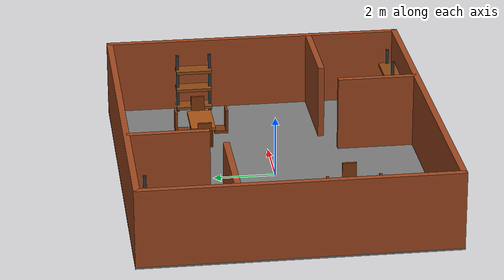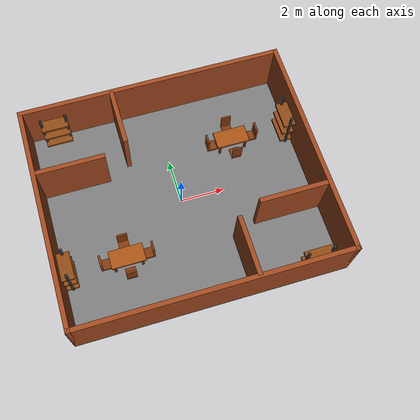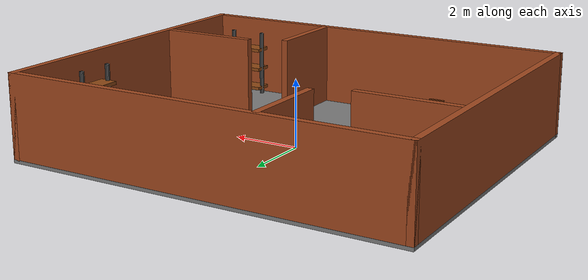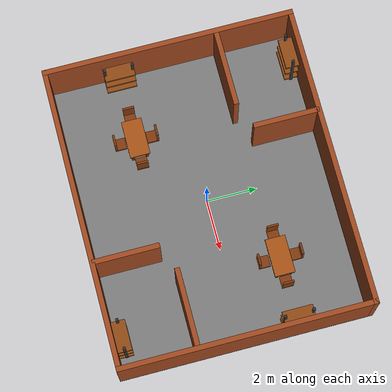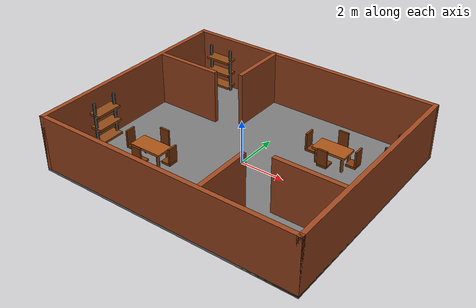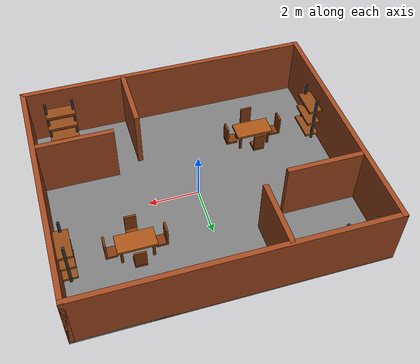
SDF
<?xml version="1.0"?>
<sdf version="1.9">
  <world name="delivery_warehouse">

    <!-- PHYSICS                                                    -->
    <physics name="warehouse_physics" type="ode">
      <max_step_size>0.004</max_step_size>
      <real_time_factor>1.0</real_time_factor>
    </physics>

    <!-- GAZEBO SYSTEMS                                             -->
    <plugin filename="gz-sim-physics-system" name="gz::sim::systems::Physics"/>
    <plugin filename="gz-sim-user-commands-system" name="gz::sim::systems::UserCommands"/>
    <plugin filename="gz-sim-scene-broadcaster-system" name="gz::sim::systems::SceneBroadcaster"/>
    <plugin filename="gz-sim-sensors-system" name="gz::sim::systems::Sensors">
      <render_engine>ogre2</render_engine>
    </plugin>

    <!-- SCENE                                                      -->
    <scene>
      <ambient>0.42 0.42 0.42 1</ambient>
      <background>0.08 0.08 0.08 1</background>
      <shadows>false</shadows>
    </scene>

    <!-- DIRECTIONAL LIGHT                                          -->
    <light name="warehouse_sun" type="directional">
      <pose>0 0 8 0 0 0</pose>
      <cast_shadows>false</cast_shadows>
      <diffuse>0.75 0.75 0.75 1</diffuse>
      <specular>0.15 0.15 0.15 1</specular>
      <direction>-0.25 0.20 -1.0</direction>
    </light>

    <!-- FLOOR                                                      -->
    <model name="warehouse_floor">
      <static>true</static>
      <link name="floor">
        <collision name="collision">
          <geometry>
            <box>
              <size>12.0 10.0 0.10</size>
            </box>
          </geometry>
        </collision>
        <visual name="floor_visual">
          <geometry>
            <box>
              <size>12.0 10.0 0.10</size>
            </box>
          </geometry>
          <material>
            <ambient>0.42 0.42 0.42 1</ambient>
            <diffuse>0.48 0.48 0.48 1</diffuse>
          </material>
        </visual>
      </link>
    </model>

    <!-- OUTER WALL - LEFT                                          -->
    <model name="outer_wall_left">
      <static>true</static>
      <pose>-5.9 0 1.25 0 0 0</pose>
      <link name="wall">
        <collision name="collision">
          <geometry>
            <box>
              <size>0.20 10.0 2.50</size>
            </box>
          </geometry>
        </collision>
        <visual name="wall_visual">
          <geometry>
            <box>
              <size>0.20 10.0 2.50</size>
            </box>
          </geometry>
          <material>
            <ambient>0.52 0.22 0.10 1</ambient>
            <diffuse>0.62 0.28 0.12 1</diffuse>
          </material>
        </visual>
      </link>
    </model>

    <!-- OUTER WALL - RIGHT                                         -->
    <model name="outer_wall_right">
      <static>true</static>
      <pose>5.9 0 1.25 0 0 0</pose>
      <link name="wall">
        <collision name="collision">
          <geometry>
            <box>
              <size>0.20 10.0 2.50</size>
            </box>
          </geometry>
        </collision>
        <visual name="wall_visual">
          <geometry>
            <box>
              <size>0.20 10.0 2.50</size>
            </box>
          </geometry>
          <material>
            <ambient>0.52 0.22 0.10 1</ambient>
            <diffuse>0.62 0.28 0.12 1</diffuse>
          </material>
        </visual>
      </link>
    </model>

    <!-- OUTER WALL - BACK / TOP                                    -->
    <model name="outer_wall_back">
      <static>true</static>
      <pose>0 4.9 1.25 0 0 0</pose>
      <link name="wall">
        <collision name="collision">
          <geometry>
            <box>
              <size>12.0 0.20 2.50</size>
            </box>
          </geometry>
        </collision>
        <visual name="wall_visual">
          <geometry>
            <box>
              <size>12.0 0.20 2.50</size>
            </box>
          </geometry>
          <material>
            <ambient>0.52 0.22 0.10 1</ambient>
            <diffuse>0.62 0.28 0.12 1</diffuse>
          </material>
        </visual>
      </link>
    </model>

    <!-- OUTER WALL - FRONT / BOTTOM                                -->
    <model name="outer_wall_front">
      <static>true</static>
      <pose>0 -4.9 1.25 0 0 0</pose>
      <link name="wall">
        <collision name="collision">
          <geometry>
            <box>
              <size>12.0 0.20 2.50</size>
            </box>
          </geometry>
        </collision>
        <visual name="wall_visual">
          <geometry>
            <box>
              <size>12.0 0.20 2.50</size>
            </box>
          </geometry>
          <material>
            <ambient>0.52 0.22 0.10 1</ambient>
            <diffuse>0.62 0.28 0.12 1</diffuse>
          </material>
        </visual>
      </link>
    </model>

    <!-- ROOM 1 : TOP LEFT                                          -->
    <!-- Room limits approximately:                                 -->
    <!-- X = -5.8 to -1.8                                            -->
    <!-- Y =  1.8 to  4.8                                            -->
    <!-- Opening = exactly 1.0 m                                     -->
    <!-- Opening is at the RIGHT side of the room's front wall.      -->

    <!-- ROOM 1 RIGHT WALL -->
    <model name="room1_right_wall">
      <static>true</static>
      <pose>-1.8 3.6 1.25 0 0 0</pose>
      <link name="wall">
        <collision name="collision">
          <geometry>
            <box>
              <size>0.20 2.60 2.50</size>
            </box>
          </geometry>
        </collision>
        <visual name="wall_visual">
          <geometry>
            <box>
              <size>0.20 2.60 2.50</size>
            </box>
          </geometry>
          <material>
            <ambient>0.52 0.22 0.10 1</ambient>
            <diffuse>0.62 0.28 0.12 1</diffuse>
          </material>
        </visual>
      </link>
    </model>

    <!-- ROOM 1 FRONT WALL -->
    <!-- Left portion -->
    <!-- Ends at x = -2.8 -->
    <!-- Opening: -2.8 to -1.8 = 1.0 m -->
    <model name="room1_front_wall">
      <static>true</static>
      <pose>-4.3 1.9 1.25 0 0 0</pose>
      <link name="wall">
        <collision name="collision">
          <geometry>
            <box>
              <size>3.0 0.20 2.50</size>
            </box>
          </geometry>
        </collision>
        <visual name="wall_visual">
          <geometry>
            <box>
              <size>3.0 0.20 2.50</size>
            </box>
          </geometry>
          <material>
            <ambient>0.52 0.22 0.10 1</ambient>
            <diffuse>0.62 0.28 0.12 1</diffuse>
          </material>
        </visual>
      </link>
    </model>

    <!-- ROOM 2 : BOTTOM RIGHT                                      -->
    <!-- Room limits approximately:                                 -->
    <!-- X =  1.8 to  5.8                                            -->
    <!-- Y = -4.8 to -1.8                                            -->
    <!-- Opening = exactly 1.0 m                                     -->
    <!-- Opening is at the LEFT side of the room's top wall.         -->

    <!-- ROOM 2 LEFT WALL -->
    <model name="room2_left_wall">
      <static>true</static>
      <pose>1.8 -3.6 1.25 0 0 0</pose>
      <link name="wall">
        <collision name="collision">
          <geometry>
            <box>
              <size>0.20 2.60 2.50</size>
            </box>
          </geometry>
        </collision>
        <visual name="wall_visual">
          <geometry>
            <box>
              <size>0.20 2.60 2.50</size>
            </box>
          </geometry>
          <material>
            <ambient>0.52 0.22 0.10 1</ambient>
            <diffuse>0.62 0.28 0.12 1</diffuse>
          </material>
        </visual>
      </link>
    </model>

    <!-- ROOM 2 TOP WALL -->
    <!-- Right portion -->
    <!-- Opening: 1.8 to 2.8 = 1.0 m -->
    <model name="room2_top_wall">
      <static>true</static>
      <pose>4.3 -1.9 1.25 0 0 0</pose>
      <link name="wall">
        <collision name="collision">
          <geometry>
            <box>
              <size>3.0 0.20 2.50</size>
            </box>
          </geometry>
        </collision>
        <visual name="wall_visual">
          <geometry>
            <box>
              <size>3.0 0.20 2.50</size>
            </box>
          </geometry>
          <material>
            <ambient>0.52 0.22 0.10 1</ambient>
            <diffuse>0.62 0.28 0.12 1</diffuse>
          </material>
        </visual>
      </link>
    </model>

    <!-- WOODEN TABLE 1 - UPPER RIGHT                               -->
    <model name="wooden_table_1">
      <static>true</static>
      <pose>3.0 2.1 0.75 0 0 0</pose>
      <link name="table">
        <!-- Table collision -->
        <collision name="collision">
          <geometry>
            <box>
              <size>1.50 0.80 0.10</size>
            </box>
          </geometry>
        </collision>

        <!-- Wooden table top -->
        <visual name="table_top">
          <pose>0 0 0 0 0 0</pose>
          <geometry>
            <box>
              <size>1.50 0.80 0.10</size>
            </box>
          </geometry>
          <material>
            <ambient>0.38 0.16 0.04 1</ambient>
            <diffuse>0.65 0.32 0.08 1</diffuse>
          </material>
        </visual>

        <!-- Legs -->
        <visual name="leg_1">
          <pose>-0.60 -0.28 -0.40 0 0 0</pose>
          <geometry>
            <box>
              <size>0.10 0.10 0.70</size>
            </box>
          </geometry>
          <material>
            <ambient>0.25 0.09 0.02 1</ambient>
            <diffuse>0.42 0.18 0.04 1</diffuse>
          </material>
        </visual>

        <visual name="leg_2">
          <pose>0.60 -0.28 -0.40 0 0 0</pose>
          <geometry>
            <box>
              <size>0.10 0.10 0.70</size>
            </box>
          </geometry>
          <material>
            <ambient>0.25 0.09 0.02 1</ambient>
            <diffuse>0.42 0.18 0.04 1</diffuse>
          </material>
        </visual>

        <visual name="leg_3">
          <pose>-0.60 0.28 -0.40 0 0 0</pose>
          <geometry>
            <box>
              <size>0.10 0.10 0.70</size>
            </box>
          </geometry>
          <material>
            <ambient>0.25 0.09 0.02 1</ambient>
            <diffuse>0.42 0.18 0.04 1</diffuse>
          </material>
        </visual>

        <visual name="leg_4">
          <pose>0.60 0.28 -0.40 0 0 0</pose>
          <geometry>
            <box>
              <size>0.10 0.10 0.70</size>
            </box>
          </geometry>
          <material>
            <ambient>0.25 0.09 0.02 1</ambient>
            <diffuse>0.42 0.18 0.04 1</diffuse>
          </material>
        </visual>
      </link>
    </model>

    <!-- WOODEN TABLE 2 - LOWER LEFT                                -->
    <model name="wooden_table_2">
      <static>true</static>
      <pose>-3.0 -2.1 0.75 0 0 0</pose>
      <link name="table">
        <collision name="collision">
          <geometry>
            <box>
              <size>1.50 0.80 0.10</size>
            </box>
          </geometry>
        </collision>

        <visual name="table_top">
          <geometry>
            <box>
              <size>1.50 0.80 0.10</size>
            </box>
          </geometry>
          <material>
            <ambient>0.38 0.16 0.04 1</ambient>
            <diffuse>0.65 0.32 0.08 1</diffuse>
          </material>
        </visual>

        <visual name="leg_1">
          <pose>-0.60 -0.28 -0.40 0 0 0</pose>
          <geometry>
            <box>
              <size>0.10 0.10 0.70</size>
            </box>
          </geometry>
          <material>
            <ambient>0.25 0.09 0.02 1</ambient>
            <diffuse>0.42 0.18 0.04 1</diffuse>
          </material>
        </visual>

        <visual name="leg_2">
          <pose>0.60 -0.28 -0.40 0 0 0</pose>
          <geometry>
            <box>
              <size>0.10 0.10 0.70</size>
            </box>
          </geometry>
          <material>
            <ambient>0.25 0.09 0.02 1</ambient>
            <diffuse>0.42 0.18 0.04 1</diffuse>
          </material>
        </visual>

        <visual name="leg_3">
          <pose>-0.60 0.28 -0.40 0 0 0</pose>
          <geometry>
            <box>
              <size>0.10 0.10 0.70</size>
            </box>
          </geometry>
          <material>
            <ambient>0.25 0.09 0.02 1</ambient>
            <diffuse>0.42 0.18 0.04 1</diffuse>
          </material>
        </visual>

        <visual name="leg_4">
          <pose>0.60 0.28 -0.40 0 0 0</pose>
          <geometry>
            <box>
              <size>0.10 0.10 0.70</size>
            </box>
          </geometry>
          <material>
            <ambient>0.25 0.09 0.02 1</ambient>
            <diffuse>0.42 0.18 0.04 1</diffuse>
          </material>
        </visual>
      </link>
    </model>

    <!-- CHAIRS AROUND TABLE 1                                      -->

    <!-- Chair 1 -->
    <model name="chair_1">
      <static>true</static>
      <pose>3.0 1.45 0.40 0 0 3.14159</pose>
      <link name="chair">
        <collision name="collision">
          <geometry>
            <box>
              <size>0.45 0.45 0.10</size>
            </box>
          </geometry>
        </collision>
        <visual name="seat">
          <geometry>
            <box>
              <size>0.45 0.45 0.10</size>
            </box>
          </geometry>
          <material>
            <ambient>0.30 0.10 0.02 1</ambient>
            <diffuse>0.50 0.22 0.05 1</diffuse>
          </material>
        </visual>
        <visual name="back">
          <pose>0 0.19 0.40 0 0 0</pose>
          <geometry>
            <box>
              <size>0.45 0.08 0.70</size>
            </box>
          </geometry>
          <material>
            <ambient>0.30 0.10 0.02 1</ambient>
            <diffuse>0.50 0.22 0.05 1</diffuse>
          </material>
        </visual>
      </link>
    </model>

    <!-- Chair 2 -->
    <model name="chair_2">
      <static>true</static>
      <pose>3.0 2.75 0.40 0 0 0</pose>
      <link name="chair">
        <collision name="collision">
          <geometry>
            <box>
              <size>0.45 0.45 0.10</size>
            </box>
          </geometry>
        </collision>
        <visual name="seat">
          <geometry>
            <box>
              <size>0.45 0.45 0.10</size>
            </box>
          </geometry>
          <material>
            <ambient>0.30 0.10 0.02 1</ambient>
            <diffuse>0.50 0.22 0.05 1</diffuse>
          </material>
        </visual>
        <visual name="back">
          <pose>0 0.19 0.40 0 0 0</pose>
          <geometry>
            <box>
              <size>0.45 0.08 0.70</size>
            </box>
          </geometry>
          <material>
            <ambient>0.30 0.10 0.02 1</ambient>
            <diffuse>0.50 0.22 0.05 1</diffuse>
          </material>
        </visual>
      </link>
    </model>

    <!-- Chair 3 -->
    <model name="chair_3">
      <static>true</static>
      <pose>2.05 2.10 0.40 0 0 1.5708</pose>
      <link name="chair">
        <collision name="collision">
          <geometry>
            <box>
              <size>0.45 0.45 0.10</size>
            </box>
          </geometry>
        </collision>
        <visual name="seat">
          <geometry>
            <box>
              <size>0.45 0.45 0.10</size>
            </box>
          </geometry>
          <material>
            <ambient>0.30 0.10 0.02 1</ambient>
            <diffuse>0.50 0.22 0.05 1</diffuse>
          </material>
        </visual>
        <visual name="back">
          <pose>0 0.19 0.40 0 0 0</pose>
          <geometry>
            <box>
              <size>0.45 0.08 0.70</size>
            </box>
          </geometry>
          <material>
            <ambient>0.30 0.10 0.02 1</ambient>
            <diffuse>0.50 0.22 0.05 1</diffuse>
          </material>
        </visual>
      </link>
    </model>

    <!-- Chair 4 -->
    <model name="chair_4">
      <static>true</static>
      <pose>3.95 2.10 0.40 0 0 -1.5708</pose>
      <link name="chair">
        <collision name="collision">
          <geometry>
            <box>
              <size>0.45 0.45 0.10</size>
            </box>
          </geometry>
        </collision>
        <visual name="seat">
          <geometry>
            <box>
              <size>0.45 0.45 0.10</size>
            </box>
          </geometry>
          <material>
            <ambient>0.30 0.10 0.02 1</ambient>
            <diffuse>0.50 0.22 0.05 1</diffuse>
          </material>
        </visual>
        <visual name="back">
          <pose>0 0.19 0.40 0 0 0</pose>
          <geometry>
            <box>
              <size>0.45 0.08 0.70</size>
            </box>
          </geometry>
          <material>
            <ambient>0.30 0.10 0.02 1</ambient>
            <diffuse>0.50 0.22 0.05 1</diffuse>
          </material>
        </visual>
      </link>
    </model>

    <!-- CHAIRS AROUND TABLE 2                                      -->

    <!-- Chair 5 -->
    <model name="chair_5">
      <static>true</static>
      <pose>-3.0 -2.75 0.40 0 0 3.14159</pose>
      <link name="chair">
        <collision name="collision">
          <geometry>
            <box>
              <size>0.45 0.45 0.10</size>
            </box>
          </geometry>
        </collision>
        <visual name="seat">
          <geometry>
            <box>
              <size>0.45 0.45 0.10</size>
            </box>
          </geometry>
          <material>
            <ambient>0.30 0.10 0.02 1</ambient>
            <diffuse>0.50 0.22 0.05 1</diffuse>
          </material>
        </visual>
        <visual name="back">
          <pose>0 0.19 0.40 0 0 0</pose>
          <geometry>
            <box>
              <size>0.45 0.08 0.70</size>
            </box>
          </geometry>
          <material>
            <ambient>0.30 0.10 0.02 1</ambient>
            <diffuse>0.50 0.22 0.05 1</diffuse>
          </material>
        </visual>
      </link>
    </model>

    <!-- Chair 6 -->
    <model name="chair_6">
      <static>true</static>
      <pose>-3.0 -1.45 0.40 0 0 0</pose>
      <link name="chair">
        <collision name="collision">
          <geometry>
            <box>
              <size>0.45 0.45 0.10</size>
            </box>
          </geometry>
        </collision>
        <visual name="seat">
          <geometry>
            <box>
              <size>0.45 0.45 0.10</size>
            </box>
          </geometry>
          <material>
            <ambient>0.30 0.10 0.02 1</ambient>
            <diffuse>0.50 0.22 0.05 1</diffuse>
          </material>
        </visual>
        <visual name="back">
          <pose>0 0.19 0.40 0 0 0</pose>
          <geometry>
            <box>
              <size>0.45 0.08 0.70</size>
            </box>
          </geometry>
          <material>
            <ambient>0.30 0.10 0.02 1</ambient>
            <diffuse>0.50 0.22 0.05 1</diffuse>
          </material>
        </visual>
      </link>
    </model>

    <!-- Chair 7 -->
    <model name="chair_7">
      <static>true</static>
      <pose>-3.95 -2.10 0.40 0 0 1.5708</pose>
      <link name="chair">
        <collision name="collision">
          <geometry>
            <box>
              <size>0.45 0.45 0.10</size>
            </box>
          </geometry>
        </collision>
        <visual name="seat">
          <geometry>
            <box>
              <size>0.45 0.45 0.10</size>
            </box>
          </geometry>
          <material>
            <ambient>0.30 0.10 0.02 1</ambient>
            <diffuse>0.50 0.22 0.05 1</diffuse>
          </material>
        </visual>
        <visual name="back">
          <pose>0 0.19 0.40 0 0 0</pose>
          <geometry>
            <box>
              <size>0.45 0.08 0.70</size>
            </box>
          </geometry>
          <material>
            <ambient>0.30 0.10 0.02 1</ambient>
            <diffuse>0.50 0.22 0.05 1</diffuse>
          </material>
        </visual>
      </link>
    </model>

    <!-- Chair 8 -->
    <model name="chair_8">
      <static>true</static>
      <pose>-2.05 -2.10 0.40 0 0 -1.5708</pose>
      <link name="chair">
        <collision name="collision">
          <geometry>
            <box>
              <size>0.45 0.45 0.10</size>
            </box>
          </geometry>
        </collision>
        <visual name="seat">
          <geometry>
            <box>
              <size>0.45 0.45 0.10</size>
            </box>
          </geometry>
          <material>
            <ambient>0.30 0.10 0.02 1</ambient>
            <diffuse>0.50 0.22 0.05 1</diffuse>
          </material>
        </visual>
        <visual name="back">
          <pose>0 0.19 0.40 0 0 0</pose>
          <geometry>
            <box>
              <size>0.45 0.08 0.70</size>
            </box>
          </geometry>
          <material>
            <ambient>0.30 0.10 0.02 1</ambient>
            <diffuse>0.50 0.22 0.05 1</diffuse>
          </material>
        </visual>
      </link>
    </model>

    <!-- WAREHOUSE LIGHTING                                         -->
    <light name="ceiling_light_1" type="point">
      <pose>-3.5 2.5 2.4 0 0 0</pose>
      <diffuse>1 1 1 1</diffuse>
      <specular>0.2 0.2 0.2 1</specular>
      <attenuation>
        <range>6</range>
        <constant>0.8</constant>
        <linear>0.05</linear>
        <quadratic>0.01</quadratic>
      </attenuation>
      <cast_shadows>false</cast_shadows>
    </light>

    <light name="ceiling_light_2" type="point">
      <pose>3.5 2.5 2.4 0 0 0</pose>
      <diffuse>1 1 1 1</diffuse>
      <specular>0.2 0.2 0.2 1</specular>
      <attenuation>
        <range>6</range>
        <constant>0.8</constant>
        <linear>0.05</linear>
        <quadratic>0.01</quadratic>
      </attenuation>
      <cast_shadows>false</cast_shadows>
    </light>

    <light name="ceiling_light_3" type="point">
      <pose>-3.5 -2.5 2.4 0 0 0</pose>
      <diffuse>1 1 1 1</diffuse>
      <specular>0.2 0.2 0.2 1</specular>
      <attenuation>
        <range>6</range>
        <constant>0.8</constant>
        <linear>0.05</linear>
        <quadratic>0.01</quadratic>
      </attenuation>
      <cast_shadows>false</cast_shadows>
    </light>

    <light name="ceiling_light_4" type="point">
      <pose>3.5 -2.5 2.4 0 0 0</pose>
      <diffuse>1 1 1 1</diffuse>
      <specular>0.2 0.2 0.2 1</specular>
      <attenuation>
        <range>6</range>
        <constant>0.8</constant>
        <linear>0.05</linear>
        <quadratic>0.01</quadratic>
      </attenuation>
      <cast_shadows>false</cast_shadows>
    </light>

    <!-- RACK 1 - INSIDE ROOM 1                                     -->
    <model name="rack_room1">
      <static>true</static>
      <pose>-4.6 4.525 1.05 0 0 0</pose>
      <link name="rack">
        <!-- Main rack frame -->
        <visual name="left_post">
          <pose>-0.55 0 0 0 0 0</pose>
          <geometry>
            <box>
              <size>0.10 0.10 2.10</size>
            </box>
          </geometry>
          <material>
            <ambient>0.12 0.12 0.12 1</ambient>
            <diffuse>0.20 0.20 0.20 1</diffuse>
          </material>
        </visual>

        <visual name="right_post">
          <pose>0.55 0 0 0 0 0</pose>
          <geometry>
            <box>
              <size>0.10 0.10 2.10</size>
            </box>
          </geometry>
          <material>
            <ambient>0.12 0.12 0.12 1</ambient>
            <diffuse>0.20 0.20 0.20 1</diffuse>
          </material>
        </visual>

        <!-- Shelves -->
        <visual name="shelf_bottom">
          <pose>0 0 -0.80 0 0 0</pose>
          <geometry>
            <box>
              <size>1.20 0.55 0.10</size>
            </box>
          </geometry>
          <material>
            <ambient>0.35 0.18 0.05 1</ambient>
            <diffuse>0.55 0.28 0.08 1</diffuse>
          </material>
        </visual>

        <visual name="shelf_middle">
          <pose>0 0 -0.15 0 0 0</pose>
          <geometry>
            <box>
              <size>1.20 0.55 0.10</size>
            </box>
          </geometry>
          <material>
            <ambient>0.35 0.18 0.05 1</ambient>
            <diffuse>0.55 0.28 0.08 1</diffuse>
          </material>
        </visual>

        <visual name="shelf_top">
          <pose>0 0 0.50 0 0 0</pose>
          <geometry>
            <box>
              <size>1.20 0.55 0.10</size>
            </box>
          </geometry>
          <material>
            <ambient>0.35 0.18 0.05 1</ambient>
            <diffuse>0.55 0.28 0.08 1</diffuse>
          </material>
        </visual>

        <!-- Rack collision -->
        <collision name="left_post_collision">
          <pose>-0.55 0 0 0 0 0</pose>
          <geometry><box><size>0.10 0.10 2.10</size></box></geometry>
        </collision>
        <collision name="right_post_collision">
          <pose>0.55 0 0 0 0 0</pose>
          <geometry><box><size>0.10 0.10 2.10</size></box></geometry>
        </collision>
        <collision name="shelf_bottom_collision">
          <pose>0 0 -0.80 0 0 0</pose>
          <geometry><box><size>1.20 0.55 0.10</size></box></geometry>
        </collision>
        <collision name="shelf_middle_collision">
          <pose>0 0 -0.15 0 0 0</pose>
          <geometry><box><size>1.20 0.55 0.10</size></box></geometry>
        </collision>
        <collision name="shelf_top_collision">
          <pose>0 0 0.50 0 0 0</pose>
          <geometry><box><size>1.20 0.55 0.10</size></box></geometry>
        </collision>
      </link>
    </model>

    <!-- RACK 2 - BESIDE TABLE 1                                    -->
    <model name="rack_table1">
      <static>true</static>
      <pose>5.525 2.10 1.05 0 0 1.5708</pose>
      <link name="rack">
        <visual name="left_post">
          <pose>-0.55 0 0 0 0 0</pose>
          <geometry>
            <box>
              <size>0.10 0.10 2.10</size>
            </box>
          </geometry>
          <material>
            <ambient>0.12 0.12 0.12 1</ambient>
            <diffuse>0.20 0.20 0.20 1</diffuse>
          </material>
        </visual>

        <visual name="right_post">
          <pose>0.55 0 0 0 0 0</pose>
          <geometry>
            <box>
              <size>0.10 0.10 2.10</size>
            </box>
          </geometry>
          <material>
            <ambient>0.12 0.12 0.12 1</ambient>
            <diffuse>0.20 0.20 0.20 1</diffuse>
          </material>
        </visual>

        <visual name="shelf_bottom">
          <pose>0 0 -0.80 0 0 0</pose>
          <geometry>
            <box>
              <size>1.20 0.55 0.10</size>
            </box>
          </geometry>
          <material>
            <ambient>0.35 0.18 0.05 1</ambient>
            <diffuse>0.55 0.28 0.08 1</diffuse>
          </material>
        </visual>

        <visual name="shelf_middle">
          <pose>0 0 -0.15 0 0 0</pose>
          <geometry>
            <box>
              <size>1.20 0.55 0.10</size>
            </box>
          </geometry>
          <material>
            <ambient>0.35 0.18 0.05 1</ambient>
            <diffuse>0.55 0.28 0.08 1</diffuse>
          </material>
        </visual>

        <visual name="shelf_top">
          <pose>0 0 0.50 0 0 0</pose>
          <geometry>
            <box>
              <size>1.20 0.55 0.10</size>
            </box>
          </geometry>
          <material>
            <ambient>0.35 0.18 0.05 1</ambient>
            <diffuse>0.55 0.28 0.08 1</diffuse>
          </material>
        </visual>

        <collision name="left_post_collision">
          <pose>-0.55 0 0 0 0 0</pose>
          <geometry><box><size>0.10 0.10 2.10</size></box></geometry>
        </collision>
        <collision name="right_post_collision">
          <pose>0.55 0 0 0 0 0</pose>
          <geometry><box><size>0.10 0.10 2.10</size></box></geometry>
        </collision>
        <collision name="shelf_bottom_collision">
          <pose>0 0 -0.80 0 0 0</pose>
          <geometry><box><size>1.20 0.55 0.10</size></box></geometry>
        </collision>
        <collision name="shelf_middle_collision">
          <pose>0 0 -0.15 0 0 0</pose>
          <geometry><box><size>1.20 0.55 0.10</size></box></geometry>
        </collision>
        <collision name="shelf_top_collision">
          <pose>0 0 0.50 0 0 0</pose>
          <geometry><box><size>1.20 0.55 0.10</size></box></geometry>
        </collision>
      </link>
    </model>

    <!-- RACK 3 - INSIDE ROOM 2                                     -->
    <model name="rack_room2">
      <static>true</static>
      <pose>4.6 -4.525 1.05 0 0 0</pose>
      <link name="rack">
        <visual name="left_post">
          <pose>-0.55 0 0 0 0 0</pose>
          <geometry>
            <box>
              <size>0.10 0.10 2.10</size>
            </box>
          </geometry>
          <material>
            <ambient>0.12 0.12 0.12 1</ambient>
            <diffuse>0.20 0.20 0.20 1</diffuse>
          </material>
        </visual>

        <visual name="right_post">
          <pose>0.55 0 0 0 0 0</pose>
          <geometry>
            <box>
              <size>0.10 0.10 2.10</size>
            </box>
          </geometry>
          <material>
            <ambient>0.12 0.12 0.12 1</ambient>
            <diffuse>0.20 0.20 0.20 1</diffuse>
          </material>
        </visual>

        <visual name="shelf_bottom">
          <pose>0 0 -0.80 0 0 0</pose>
          <geometry>
            <box>
              <size>1.20 0.55 0.10</size>
            </box>
          </geometry>
          <material>
            <ambient>0.35 0.18 0.05 1</ambient>
            <diffuse>0.55 0.28 0.08 1</diffuse>
          </material>
        </visual>

        <visual name="shelf_middle">
          <pose>0 0 -0.15 0 0 0</pose>
          <geometry>
            <box>
              <size>1.20 0.55 0.10</size>
            </box>
          </geometry>
          <material>
            <ambient>0.35 0.18 0.05 1</ambient>
            <diffuse>0.55 0.28 0.08 1</diffuse>
          </material>
        </visual>

        <visual name="shelf_top">
          <pose>0 0 0.50 0 0 0</pose>
          <geometry>
            <box>
              <size>1.20 0.55 0.10</size>
            </box>
          </geometry>
          <material>
            <ambient>0.35 0.18 0.05 1</ambient>
            <diffuse>0.55 0.28 0.08 1</diffuse>
          </material>
        </visual>

        <collision name="left_post_collision">
          <pose>-0.55 0 0 0 0 0</pose>
          <geometry><box><size>0.10 0.10 2.10</size></box></geometry>
        </collision>
        <collision name="right_post_collision">
          <pose>0.55 0 0 0 0 0</pose>
          <geometry><box><size>0.10 0.10 2.10</size></box></geometry>
        </collision>
        <collision name="shelf_bottom_collision">
          <pose>0 0 -0.80 0 0 0</pose>
          <geometry><box><size>1.20 0.55 0.10</size></box></geometry>
        </collision>
        <collision name="shelf_middle_collision">
          <pose>0 0 -0.15 0 0 0</pose>
          <geometry><box><size>1.20 0.55 0.10</size></box></geometry>
        </collision>
        <collision name="shelf_top_collision">
          <pose>0 0 0.50 0 0 0</pose>
          <geometry><box><size>1.20 0.55 0.10</size></box></geometry>
        </collision>
      </link>
    </model>

    <!-- RACK 4 - BESIDE TABLE 2                                    -->
    <model name="rack_table2">
      <static>true</static>
      <pose>-5.525 -2.10 1.05 0 0 1.5708</pose>
      <link name="rack">
        <visual name="left_post">
          <pose>-0.55 0 0 0 0 0</pose>
          <geometry>
            <box>
              <size>0.10 0.10 2.10</size>
            </box>
          </geometry>
          <material>
            <ambient>0.12 0.12 0.12 1</ambient>
            <diffuse>0.20 0.20 0.20 1</diffuse>
          </material>
        </visual>

        <visual name="right_post">
          <pose>0.55 0 0 0 0 0</pose>
          <geometry>
            <box>
              <size>0.10 0.10 2.10</size>
            </box>
          </geometry>
          <material>
            <ambient>0.12 0.12 0.12 1</ambient>
            <diffuse>0.20 0.20 0.20 1</diffuse>
          </material>
        </visual>

        <visual name="shelf_bottom">
          <pose>0 0 -0.80 0 0 0</pose>
          <geometry>
            <box>
              <size>1.20 0.55 0.10</size>
            </box>
          </geometry>
          <material>
            <ambient>0.35 0.18 0.05 1</ambient>
            <diffuse>0.55 0.28 0.08 1</diffuse>
          </material>
        </visual>

        <visual name="shelf_middle">
          <pose>0 0 -0.15 0 0 0</pose>
          <geometry>
            <box>
              <size>1.20 0.55 0.10</size>
            </box>
          </geometry>
          <material>
            <ambient>0.35 0.18 0.05 1</ambient>
            <diffuse>0.55 0.28 0.08 1</diffuse>
          </material>
        </visual>

        <visual name="shelf_top">
          <pose>0 0 0.50 0 0 0</pose>
          <geometry>
            <box>
              <size>1.20 0.55 0.10</size>
            </box>
          </geometry>
          <material>
            <ambient>0.35 0.18 0.05 1</ambient>
            <diffuse>0.55 0.28 0.08 1</diffuse>
          </material>
        </visual>

        <collision name="left_post_collision">
          <pose>-0.55 0 0 0 0 0</pose>
          <geometry><box><size>0.10 0.10 2.10</size></box></geometry>
        </collision>
        <collision name="right_post_collision">
          <pose>0.55 0 0 0 0 0</pose>
          <geometry><box><size>0.10 0.10 2.10</size></box></geometry>
        </collision>
        <collision name="shelf_bottom_collision">
          <pose>0 0 -0.80 0 0 0</pose>
          <geometry><box><size>1.20 0.55 0.10</size></box></geometry>
        </collision>
        <collision name="shelf_middle_collision">
          <pose>0 0 -0.15 0 0 0</pose>
          <geometry><box><size>1.20 0.55 0.10</size></box></geometry>
        </collision>
        <collision name="shelf_top_collision">
          <pose>0 0 0.50 0 0 0</pose>
          <geometry><box><size>1.20 0.55 0.10</size></box></geometry>
        </collision>
      </link>
    </model>

  </world>
</sdf>
